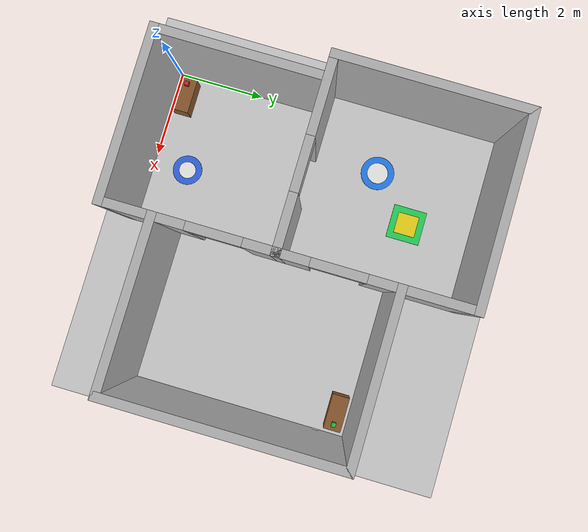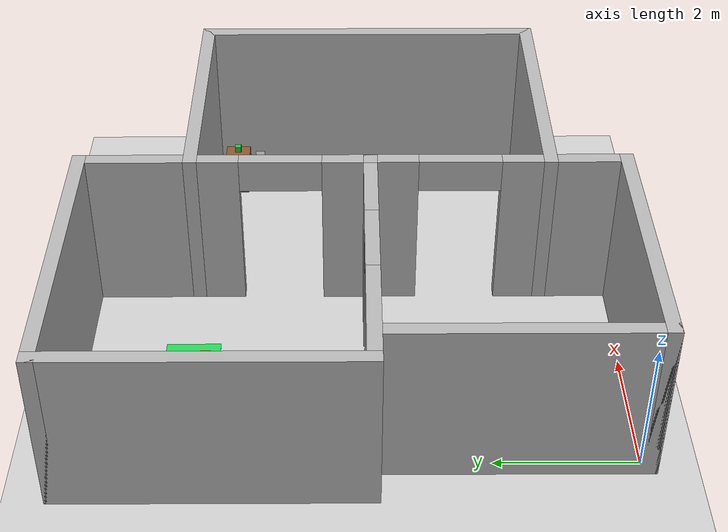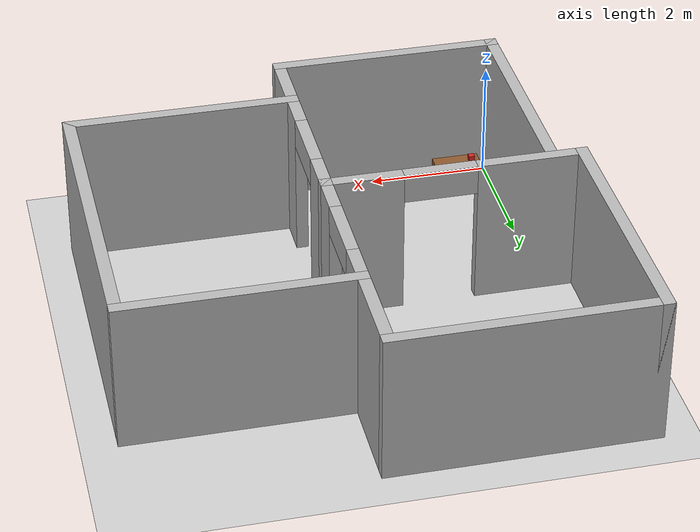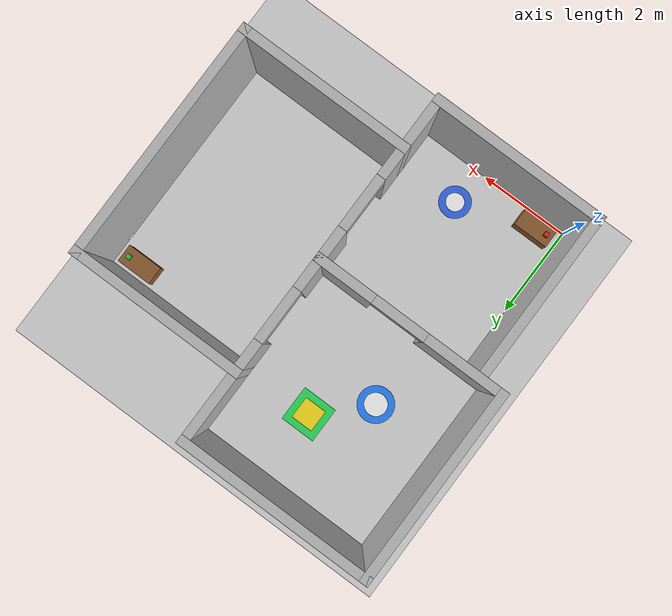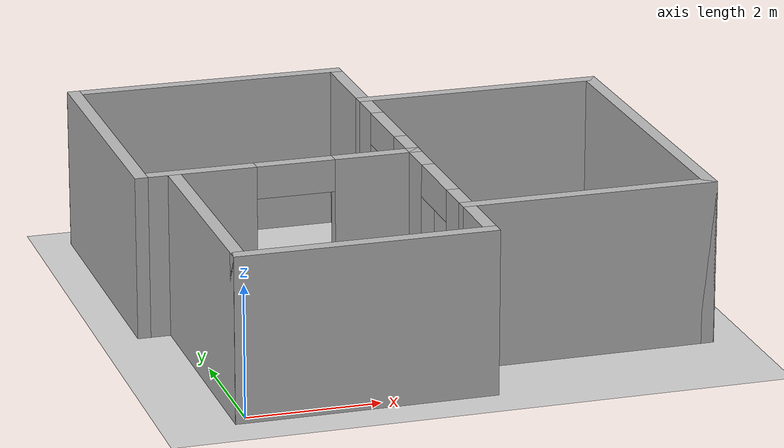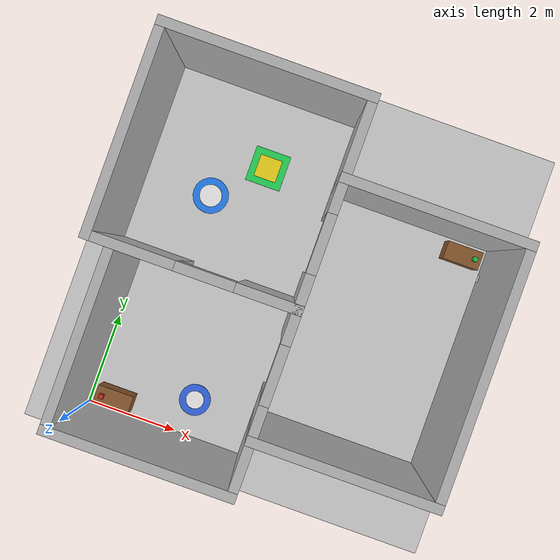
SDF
<?xml version="1.0"?>
<sdf version="1.6">
  <world name="multiroom">

    <!-- Physics & System Plugins -->
    <plugin filename="gz-sim-physics-system"
            name="gz::sim::systems::Physics"/>
    <plugin filename="gz-sim-scene-broadcaster-system"
            name="gz::sim::systems::SceneBroadcaster"/>
    <plugin filename="gz-sim-user-commands-system"
            name="gz::sim::systems::UserCommands"/>
    <plugin filename="gz-sim-sensors-system"
            name="gz::sim::systems::Sensors">
      <render_engine>ogre2</render_engine>
    </plugin>

    <!-- Lighting -->
    <light type="directional" name="sun">
      <cast_shadows>false</cast_shadows>
      <pose>3.5 3.5 12 0 0 0</pose>
      <diffuse>0.9 0.9 0.9 1</diffuse>
      <specular>0.3 0.3 0.3 1</specular>
      <direction>-0.3 0.2 -1</direction>
      <attenuation>
        <range>1000</range>
        <constant>0.9</constant>
        <linear>0.01</linear>
        <quadratic>0.001</quadratic>
      </attenuation>
    </light>

    <!-- Ambient Fill Light for Even Illumination Across All Rooms -->
    <light type="directional" name="ambient_fill">
      <cast_shadows>false</cast_shadows>
      <pose>3.5 3.5 10 0 0 0</pose>
      <diffuse>0.5 0.5 0.5 1</diffuse>
      <specular>0.1 0.1 0.1 1</specular>
      <direction>0.3 -0.2 -1</direction>
    </light>

    <!-- Ground Plane -->
    <model name="ground_plane">
      <static>true</static>
      <link name="link">
        <collision name="collision">
          <geometry>
            <plane>
              <normal>0 0 1</normal>
            </plane>
          </geometry>
        </collision>
        <visual name="visual">
          <geometry>
            <plane>
              <normal>0 0 1</normal>
              <size>30 30</size>
            </plane>
          </geometry>
          <material>
            <ambient>0.82 0.82 0.82 1</ambient>
            <diffuse>0.82 0.82 0.82 1</diffuse>
            <specular>0.3 0.3 0.3 1</specular>
          </material>
        </visual>
      </link>
    </model>

    <!-- ROOM 1 (Top-Left: 4.0m x 4.0m, bounds: X[-0.5, 3.5], Y[3.7, 7.7]) -->

    <!-- Room 1 Outer North Wall -->
    <model name="room1_north_wall">
      <static>true</static>
      <pose>1.5 7.8 1.25 0 0 0</pose>
      <link name="link">
        <collision name="collision">
          <geometry>
            <box>
              <size>4.4 0.2 2.5</size>
            </box>
          </geometry>
        </collision>
        <visual name="visual">
          <geometry>
            <box>
              <size>4.4 0.2 2.5</size>
            </box>
          </geometry>
          <material>
            <ambient>0.72 0.72 0.72 1</ambient>
            <diffuse>0.72 0.72 0.72 1</diffuse>
          </material>
        </visual>
      </link>
    </model>

    <!-- Room 1 Outer West Wall -->
    <model name="room1_west_wall">
      <static>true</static>
      <pose>-0.6 5.7 1.25 0 0 0</pose>
      <link name="link">
        <collision name="collision">
          <geometry>
            <box>
              <size>0.2 4.4 2.5</size>
            </box>
          </geometry>
        </collision>
        <visual name="visual">
          <geometry>
            <box>
              <size>0.2 4.4 2.5</size>
            </box>
          </geometry>
          <material>
            <ambient>0.72 0.72 0.72 1</ambient>
            <diffuse>0.72 0.72 0.72 1</diffuse>
          </material>
        </visual>
      </link>
    </model>

    <!-- Room 1 East Upper Outer Wall (Above Room 3) -->
    <model name="room1_east_upper_wall">
      <static>true</static>
      <pose>3.6 7.0 1.25 0 0 0</pose>
      <link name="link">
        <collision name="collision">
          <geometry>
            <box>
              <size>0.2 1.4 2.5</size>
            </box>
          </geometry>
        </collision>
        <visual name="visual">
          <geometry>
            <box>
              <size>0.2 1.4 2.5</size>
            </box>
          </geometry>
          <material>
            <ambient>0.72 0.72 0.72 1</ambient>
            <diffuse>0.72 0.72 0.72 1</diffuse>
          </material>
        </visual>
      </link>
    </model>

    <!-- ROOM 2 (Bottom-Left: 3.5m x 3.5m, bounds: X[0.0, 3.5], Y[0.0, 3.5])-->

    <!-- Room 2 Outer South Wall -->
    <model name="room2_south_wall">
      <static>true</static>
      <pose>1.75 -0.1 1.25 0 0 0</pose>
      <link name="link">
        <collision name="collision">
          <geometry>
            <box>
              <size>3.9 0.2 2.5</size>
            </box>
          </geometry>
        </collision>
        <visual name="visual">
          <geometry>
            <box>
              <size>3.9 0.2 2.5</size>
            </box>
          </geometry>
          <material>
            <ambient>0.72 0.72 0.72 1</ambient>
            <diffuse>0.72 0.72 0.72 1</diffuse>
          </material>
        </visual>
      </link>
    </model>

    <!-- Room 2 Outer West Wall -->
    <model name="room2_west_wall">
      <static>true</static>
      <pose>-0.1 1.65 1.25 0 0 0</pose>
      <link name="link">
        <collision name="collision">
          <geometry>
            <box>
              <size>0.2 3.7 2.5</size>
            </box>
          </geometry>
        </collision>
        <visual name="visual">
          <geometry>
            <box>
              <size>0.2 3.7 2.5</size>
            </box>
          </geometry>
          <material>
            <ambient>0.72 0.72 0.72 1</ambient>
            <diffuse>0.72 0.72 0.72 1</diffuse>
          </material>
        </visual>
      </link>
    </model>

    <!-- Room 2 East Lower Outer Wall (Below Room 3) -->
    <model name="room2_east_lower_wall">
      <static>true</static>
      <pose>3.6 0.45 1.25 0 0 0</pose>
      <link name="link">
        <collision name="collision">
          <geometry>
            <box>
              <size>0.2 0.9 2.5</size>
            </box>
          </geometry>
        </collision>
        <visual name="visual">
          <geometry>
            <box>
              <size>0.2 0.9 2.5</size>
            </box>
          </geometry>
          <material>
            <ambient>0.72 0.72 0.72 1</ambient>
            <diffuse>0.72 0.72 0.72 1</diffuse>
          </material>
        </visual>
      </link>
    </model>

    <!-- SHARED WALL BETWEEN ROOM 1 & ROOM 2 (Horizontal Partition Y=3.6)   -->
    <!-- Doorway width: 1.2m, height: 2.0m, centered at X=1.75             -->

    <!-- Room 1-2 Shared Wall (West of Doorway) -->
    <model name="shared_wall_r1_r2_west">
      <static>true</static>
      <pose>0.325 3.6 1.25 0 0 0</pose>
      <link name="link">
        <collision name="collision">
          <geometry>
            <box>
              <size>1.65 0.2 2.5</size>
            </box>
          </geometry>
        </collision>
        <visual name="visual">
          <geometry>
            <box>
              <size>1.65 0.2 2.5</size>
            </box>
          </geometry>
          <material>
            <ambient>0.72 0.72 0.72 1</ambient>
            <diffuse>0.72 0.72 0.72 1</diffuse>
          </material>
        </visual>
      </link>
    </model>

    <!-- Room 1-2 Shared Wall (East of Doorway) -->
    <model name="shared_wall_r1_r2_east">
      <static>true</static>
      <pose>3.025 3.6 1.25 0 0 0</pose>
      <link name="link">
        <collision name="collision">
          <geometry>
            <box>
              <size>1.35 0.2 2.5</size>
            </box>
          </geometry>
        </collision>
        <visual name="visual">
          <geometry>
            <box>
              <size>1.35 0.2 2.5</size>
            </box>
          </geometry>
          <material>
            <ambient>0.72 0.72 0.72 1</ambient>
            <diffuse>0.72 0.72 0.72 1</diffuse>
          </material>
        </visual>
      </link>
    </model>

    <!-- Room 1-2 Doorway Lintel (Top header above 2.0m) -->
    <model name="doorway_lintel_r1_r2">
      <static>true</static>
      <pose>1.75 3.6 2.25 0 0 0</pose>
      <link name="link">
        <collision name="collision">
          <geometry>
            <box>
              <size>1.2 0.2 0.5</size>
            </box>
          </geometry>
        </collision>
        <visual name="visual">
          <geometry>
            <box>
              <size>1.2 0.2 0.5</size>
            </box>
          </geometry>
          <material>
            <ambient>0.72 0.72 0.72 1</ambient>
            <diffuse>0.72 0.72 0.72 1</diffuse>
          </material>
        </visual>
      </link>
    </model>

    <!-- ROOM 3 (Right: 3.5m x 5.0m, bounds: X[3.7, 7.2], Y[1.1, 6.1])     -->

    <!-- Room 3 Outer North Wall -->
    <model name="room3_north_wall">
      <static>true</static>
      <pose>5.45 6.2 1.25 0 0 0</pose>
      <link name="link">
        <collision name="collision">
          <geometry>
            <box>
              <size>3.9 0.2 2.5</size>
            </box>
          </geometry>
        </collision>
        <visual name="visual">
          <geometry>
            <box>
              <size>3.9 0.2 2.5</size>
            </box>
          </geometry>
          <material>
            <ambient>0.72 0.72 0.72 1</ambient>
            <diffuse>0.72 0.72 0.72 1</diffuse>
          </material>
        </visual>
      </link>
    </model>

    <!-- Room 3 Outer South Wall -->
    <model name="room3_south_wall">
      <static>true</static>
      <pose>5.45 1.0 1.25 0 0 0</pose>
      <link name="link">
        <collision name="collision">
          <geometry>
            <box>
              <size>3.9 0.2 2.5</size>
            </box>
          </geometry>
        </collision>
        <visual name="visual">
          <geometry>
            <box>
              <size>3.9 0.2 2.5</size>
            </box>
          </geometry>
          <material>
            <ambient>0.72 0.72 0.72 1</ambient>
            <diffuse>0.72 0.72 0.72 1</diffuse>
          </material>
        </visual>
      </link>
    </model>

    <!-- Room 3 Outer East Wall -->
    <model name="room3_east_wall">
      <static>true</static>
      <pose>7.3 3.6 1.25 0 0 0</pose>
      <link name="link">
        <collision name="collision">
          <geometry>
            <box>
              <size>0.2 5.4 2.5</size>
            </box>
          </geometry>
        </collision>
        <visual name="visual">
          <geometry>
            <box>
              <size>0.2 5.4 2.5</size>
            </box>
          </geometry>
          <material>
            <ambient>0.72 0.72 0.72 1</ambient>
            <diffuse>0.72 0.72 0.72 1</diffuse>
          </material>
        </visual>
      </link>
    </model>

    <!-- SHARED WALL BETWEEN ROOM 1 & ROOM 3 (Vertical Partition X=3.6)     -->
    <!-- Doorway width: 1.2m, height: 2.0m, centered at Y=4.9              -->

    <!-- Room 1-3 Shared Wall (South of Doorway) -->
    <model name="shared_wall_r1_r3_south">
      <static>true</static>
      <pose>3.6 4.0 1.25 0 0 0</pose>
      <link name="link">
        <collision name="collision">
          <geometry>
            <box>
              <size>0.2 0.6 2.5</size>
            </box>
          </geometry>
        </collision>
        <visual name="visual">
          <geometry>
            <box>
              <size>0.2 0.6 2.5</size>
            </box>
          </geometry>
          <material>
            <ambient>0.72 0.72 0.72 1</ambient>
            <diffuse>0.72 0.72 0.72 1</diffuse>
          </material>
        </visual>
      </link>
    </model>

    <!-- Room 1-3 Shared Wall (North of Doorway) -->
    <model name="shared_wall_r1_r3_north">
      <static>true</static>
      <pose>3.6 5.8 1.25 0 0 0</pose>
      <link name="link">
        <collision name="collision">
          <geometry>
            <box>
              <size>0.2 0.6 2.5</size>
            </box>
          </geometry>
        </collision>
        <visual name="visual">
          <geometry>
            <box>
              <size>0.2 0.6 2.5</size>
            </box>
          </geometry>
          <material>
            <ambient>0.72 0.72 0.72 1</ambient>
            <diffuse>0.72 0.72 0.72 1</diffuse>
          </material>
        </visual>
      </link>
    </model>

    <!-- Room 1-3 Doorway Lintel (Top header above 2.0m) -->
    <model name="doorway_lintel_r1_r3">
      <static>true</static>
      <pose>3.6 4.9 2.25 0 0 0</pose>
      <link name="link">
        <collision name="collision">
          <geometry>
            <box>
              <size>0.2 1.2 0.5</size>
            </box>
          </geometry>
        </collision>
        <visual name="visual">
          <geometry>
            <box>
              <size>0.2 1.2 0.5</size>
            </box>
          </geometry>
          <material>
            <ambient>0.72 0.72 0.72 1</ambient>
            <diffuse>0.72 0.72 0.72 1</diffuse>
          </material>
        </visual>
      </link>
    </model>

    <!-- Partition Corner Post (Intersection at X=3.6, Y=3.6) -->
    <model name="partition_intersection_post">
      <static>true</static>
      <pose>3.6 3.6 1.25 0 0 0</pose>
      <link name="link">
        <collision name="collision">
          <geometry>
            <box>
              <size>0.2 0.2 2.5</size>
            </box>
          </geometry>
        </collision>
        <visual name="visual">
          <geometry>
            <box>
              <size>0.2 0.2 2.5</size>
            </box>
          </geometry>
          <material>
            <ambient>0.72 0.72 0.72 1</ambient>
            <diffuse>0.72 0.72 0.72 1</diffuse>
          </material>
        </visual>
      </link>
    </model>

    <!-- SHARED WALL BETWEEN ROOM 2 & ROOM 3 (Vertical Partition X=3.6)     -->
    <!-- Doorway width: 1.2m, height: 2.0m, centered at Y=2.3              -->

    <!-- Room 2-3 Shared Wall (South of Doorway) -->
    <model name="shared_wall_r2_r3_south">
      <static>true</static>
      <pose>3.6 1.4 1.25 0 0 0</pose>
      <link name="link">
        <collision name="collision">
          <geometry>
            <box>
              <size>0.2 0.6 2.5</size>
            </box>
          </geometry>
        </collision>
        <visual name="visual">
          <geometry>
            <box>
              <size>0.2 0.6 2.5</size>
            </box>
          </geometry>
          <material>
            <ambient>0.72 0.72 0.72 1</ambient>
            <diffuse>0.72 0.72 0.72 1</diffuse>
          </material>
        </visual>
      </link>
    </model>

    <!-- Room 2-3 Shared Wall (North of Doorway) -->
    <model name="shared_wall_r2_r3_north">
      <static>true</static>
      <pose>3.6 3.2 1.25 0 0 0</pose>
      <link name="link">
        <collision name="collision">
          <geometry>
            <box>
              <size>0.2 0.6 2.5</size>
            </box>
          </geometry>
        </collision>
        <visual name="visual">
          <geometry>
            <box>
              <size>0.2 0.6 2.5</size>
            </box>
          </geometry>
          <material>
            <ambient>0.72 0.72 0.72 1</ambient>
            <diffuse>0.72 0.72 0.72 1</diffuse>
          </material>
        </visual>
      </link>
    </model>

    <!-- Room 2-3 Doorway Lintel (Top header above 2.0m) -->
    <model name="doorway_lintel_r2_r3">
      <static>true</static>
      <pose>3.6 2.3 2.25 0 0 0</pose>
      <link name="link">
        <collision name="collision">
          <geometry>
            <box>
              <size>0.2 1.2 0.5</size>
            </box>
          </geometry>
        </collision>
        <visual name="visual">
          <geometry>
            <box>
              <size>0.2 1.2 0.5</size>
            </box>
          </geometry>
          <material>
            <ambient>0.72 0.72 0.72 1</ambient>
            <diffuse>0.72 0.72 0.72 1</diffuse>
          </material>
        </visual>
      </link>
    </model>

    <!-- SHELF 1 (Room 2, Bottom-Left Corner: 0.6m x 0.4m x 0.4m)           -->
    <!-- Wall Standoff: 0.1m from South & West walls. Center: (0.4, 0.3)   -->
    <model name="shelf_1">
      <static>true</static>
      <pose>0.55 0.3 0.2 0 0 0</pose>
      <link name="link">
        <collision name="collision">
          <geometry>
            <box>
              <size>0.8 0.4 0.4</size>
            </box>
          </geometry>
        </collision>
        <visual name="visual">
          <geometry>
            <box>
              <size>0.8 0.4 0.4</size>
            </box>
          </geometry>
          <material>
            <ambient>0.45 0.28 0.14 1</ambient>
            <diffuse>0.55 0.35 0.18 1</diffuse>
          </material>
        </visual>
      </link>
    </model>

    <!-- BOX 1 (Spawned on Shelf 1, 0.15m x 0.15m x 0.12m, mass: 0.5kg)    -->
    <!-- 0.1m lateral from arm base on shelf surface (z = 0.46m)           -->
    <model name="box_1">
      <pose>0.3 0.3 0.46 0 0 0</pose>
      <link name="link">
        <inertial>
          <mass>0.5</mass>
          <inertia>
            <ixx>0.0015375</ixx>
            <ixy>0</ixy>
            <ixz>0</ixz>
            <iyy>0.0015375</iyy>
            <iyz>0</iyz>
            <izz>0.001875</izz>
          </inertia>
        </inertial>
        <collision name="collision">
          <geometry>
            <box>
              <size>0.15 0.15 0.12</size>
            </box>
          </geometry>
        </collision>
        <visual name="visual">
          <geometry>
            <box>
              <size>0.1 0.1 0.1</size>
            </box>
          </geometry>
          <material>
            <ambient>0.85 0.15 0.15 1</ambient>
            <diffuse>0.85 0.15 0.15 1</diffuse>
          </material>
        </visual>
      </link>
    </model>

    <!-- SHELF 2 (Room 3, Top-Right Corner: 0.6m x 0.4m x 0.4m)             -->
    <!-- Wall Standoff: 0.1m from North & East walls. Center: (6.8, 5.8)   -->
    <model name="shelf_2">
      <static>true</static>
      <pose>6.65 5.8 0.2 0 0 0</pose>
      <link name="link">
        <collision name="collision">
          <geometry>
            <box>
              <size>0.8 0.4 0.4</size>
            </box>
          </geometry>
        </collision>
        <visual name="visual">
          <geometry>
            <box>
              <size>0.8 0.4 0.4</size>
            </box>
          </geometry>
          <material>
            <ambient>0.45 0.28 0.14 1</ambient>
            <diffuse>0.55 0.35 0.18 1</diffuse>
          </material>
        </visual>
      </link>
    </model>

    <!-- BOX 2 (Destination / Target zone on Shelf 2)                       -->
    <model name="box_2">
      <pose>6.9 5.8 0.46 0 0 0</pose>
      <link name="link">
        <inertial>
          <mass>0.5</mass>
          <inertia>
            <ixx>0.0015375</ixx>
            <ixy>0</ixy>
            <ixz>0</ixz>
            <iyy>0.0015375</iyy>
            <iyz>0</iyz>
            <izz>0.001875</izz>
          </inertia>
        </inertial>
        <collision name="collision">
          <geometry>
            <box>
              <size>0.15 0.15 0.12</size>
            </box>
          </geometry>
        </collision>
        <visual name="visual">
          <geometry>
            <box>
              <size>0.1 0.1 0.1</size>
            </box>
          </geometry>
          <material>
            <ambient>0.15 0.75 0.25 1</ambient>
            <diffuse>0.15 0.75 0.25 1</diffuse>
          </material>
        </visual>
      </link>
    </model>

    <!-- ROOM 1 POSITIONS: BASE STATION & DESTINATION                      -->
    <!-- Base Station: x=1.5, y=1.5 from Room 1 origin (-0.5, 3.7) -> (1.0, 5.2) -->
    <!-- Destination : x=2.5, y=2.5 from Room 1 origin (-0.5, 3.7) -> (2.0, 6.2) -->

    <!-- Base Station Docking Pad -->
    <model name="base_station">
      <static>true</static>
      <pose>1.0 5.2 0.005 0 0 0</pose>
      <link name="link">
        <visual name="pad_outer">
          <geometry>
            <cylinder>
              <radius>0.4</radius>
              <length>0.01</length>
            </cylinder>
          </geometry>
          <material>
            <ambient>0.1 0.4 0.8 1</ambient>
            <diffuse>0.15 0.5 0.95 1</diffuse>
          </material>
        </visual>
        <visual name="pad_inner">
          <pose>0 0 0.002 0 0 0</pose>
          <geometry>
            <cylinder>
              <radius>0.25</radius>
              <length>0.01</length>
            </cylinder>
          </geometry>
          <material>
            <ambient>0.9 0.9 0.9 1</ambient>
            <diffuse>0.95 0.95 0.95 1</diffuse>
          </material>
        </visual>
      </link>
    </model>

    <!-- Destination Dropoff Zone -->
    <model name="destination_station">
      <static>true</static>
      <pose>2.0 6.2 0.005 0 0 0</pose>
      <link name="link">
        <visual name="pad_outer">
          <geometry>
            <box>
              <size>0.8 0.8 0.01</size>
            </box>
          </geometry>
          <material>
            <ambient>0.1 0.7 0.3 1</ambient>
            <diffuse>0.15 0.85 0.35 1</diffuse>
          </material>
        </visual>
        <visual name="pad_inner">
          <pose>0 0 0.002 0 0 0</pose>
          <geometry>
            <box>
              <size>0.5 0.5 0.01</size>
            </box>
          </geometry>
          <material>
            <ambient>0.95 0.85 0.1 1</ambient>
            <diffuse>0.95 0.85 0.1 1</diffuse>
          </material>
        </visual>
      </link>
    </model>

    <!-- ROOM 2 SPAWN POSITION MARKER                                      -->
    <!-- Spawn location in Room 2: (2.2, 0.8)                              -->
    <model name="spawn_marker">
      <static>true</static>
      <pose>2.2 0.8 0.005 0 0 0</pose>
      <link name="link">
        <visual name="outer_ring">
          <geometry>
            <cylinder>
              <radius>0.35</radius>
              <length>0.01</length>
            </cylinder>
          </geometry>
          <material>
            <ambient>0.2 0.2 0.8 1</ambient>
            <diffuse>0.2 0.4 0.9 1</diffuse>
          </material>
        </visual>
        <visual name="inner_ring">
          <pose>0 0 0.002 0 0 0</pose>
          <geometry>
            <cylinder>
              <radius>0.2</radius>
              <length>0.01</length>
            </cylinder>
          </geometry>
          <material>
            <ambient>0.95 0.95 0.95 1</ambient>
            <diffuse>0.95 0.95 0.95 1</diffuse>
          </material>
        </visual>
      </link>
    </model>

    <!-- ARUCO MARKERS                                                       -->
    <!-- Dictionary: DICT_4X4_50                                             -->
    <!-- Panel face: 0.15 m (texture incl. 1-module white quiet zone);       -->
    <!-- detectable marker (black-border outer edge) = 0.1125 m — keep       -->
    <!-- aruco_detector_node's marker_size param in sync (0.1125).           -->
    <!-- ID 0 — Room 2 south APPROACH wall (front camera detects)           -->
    <!--         Shelf 1 is at y=0.3; robot enters from y>0 direction       -->
    <!--         Panel on south wall (y≈-0.1), facing +Y toward robot       -->
    <!-- ID 1 — Shelf 1 DOCK marker (rear camera detects while reversing)   -->
    <!--         On the +Y face of shelf_1 (y=0.5); robot backs from +Y     -->
    <!-- ID 2 — Room 3 west APPROACH wall (front camera detects)            -->
    <!--         Shelf 2 is at x=6.65; robot enters Room 3 from x<3.6      -->
    <!--         Panel on west wall (x≈3.6 doorway side), facing +X         -->
    <!-- ID 3 — Shelf 2 DOCK marker (rear camera detects while reversing)   -->
    <!--         On the -Y face of shelf_2 (y=5.6); robot backs from -Y    -->

    <model name="aruco_dock_shelf1">
      <pose>0.025 0.7431 0.13 0 0 1.5707</pose>
      <static>true</static>
      <link name="link">
        <visual name="visual">
          <geometry>
            <box>
              <size>0.15 0.002 0.15</size>
            </box>
          </geometry>
          <material>
            <ambient>1 1 1 1</ambient>
            <diffuse>1 1 1 1</diffuse>
            <specular>0 0 0 1</specular>
            <pbr>
              <metal>
                <albedo_map>file:///home/jade/Desktop/robotics-ws/src/robot_description/models/aruco_marker_0/materials/textures/aruco_0.png</albedo_map>
                <metalness>0.0</metalness>
                <roughness>1.0</roughness>
              </metal>
            </pbr>
          </material>
        </visual>
        <collision name="collision">
          <geometry>
            <box>
              <size>0.15 0.002 0.15</size>
            </box>
          </geometry>
        </collision>
      </link>
    </model>

    <model name="aruco_dock_shelf2">
      <pose>7.185 5.4463 0.13 0 0 -1.5707</pose>
      <static>true</static>
      <link name="link">
        <visual name="visual">
          <geometry>
            <box>
              <size>0.15 0.002 0.15</size>
            </box>
          </geometry>
          <material>
            <ambient>1 1 1 1</ambient>
            <diffuse>1 1 1 1</diffuse>
            <specular>0 0 0 1</specular>
            <pbr>
              <metal>
                <albedo_map>file:///home/jade/Desktop/robotics-ws/src/robot_description/models/aruco_marker_1/materials/textures/aruco_1.png</albedo_map>
                <metalness>0.0</metalness>
                <roughness>1.0</roughness>
              </metal>
            </pbr>
          </material>
        </visual>
        <collision name="collision">
          <geometry>
            <box>
              <size>0.15 0.002 0.15</size>
            </box>
          </geometry>
        </collision>
      </link>
    </model>

  </world>
</sdf>
